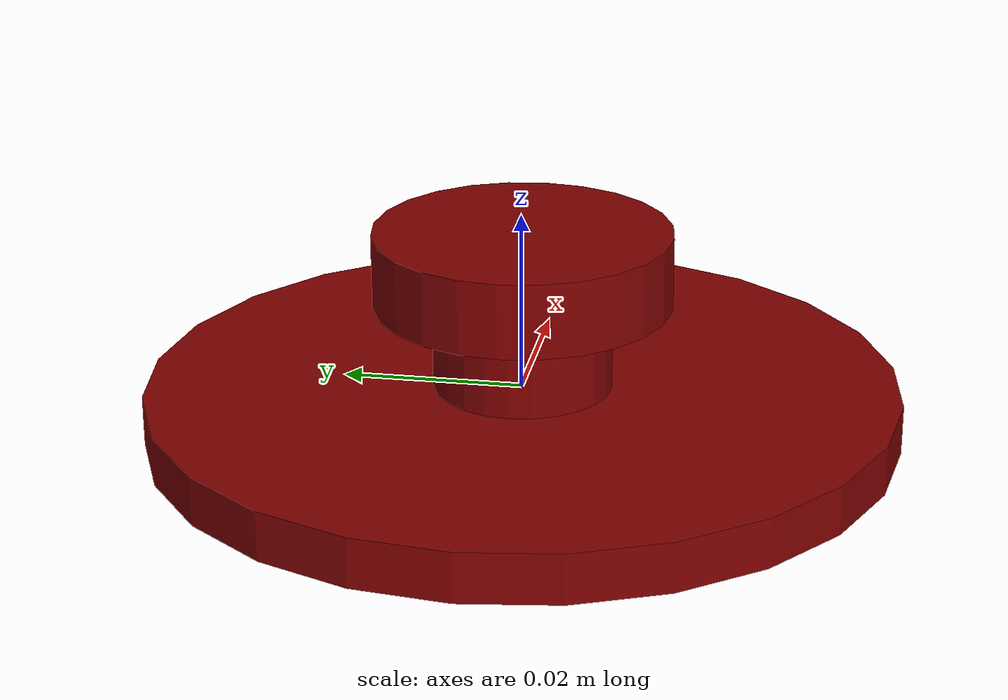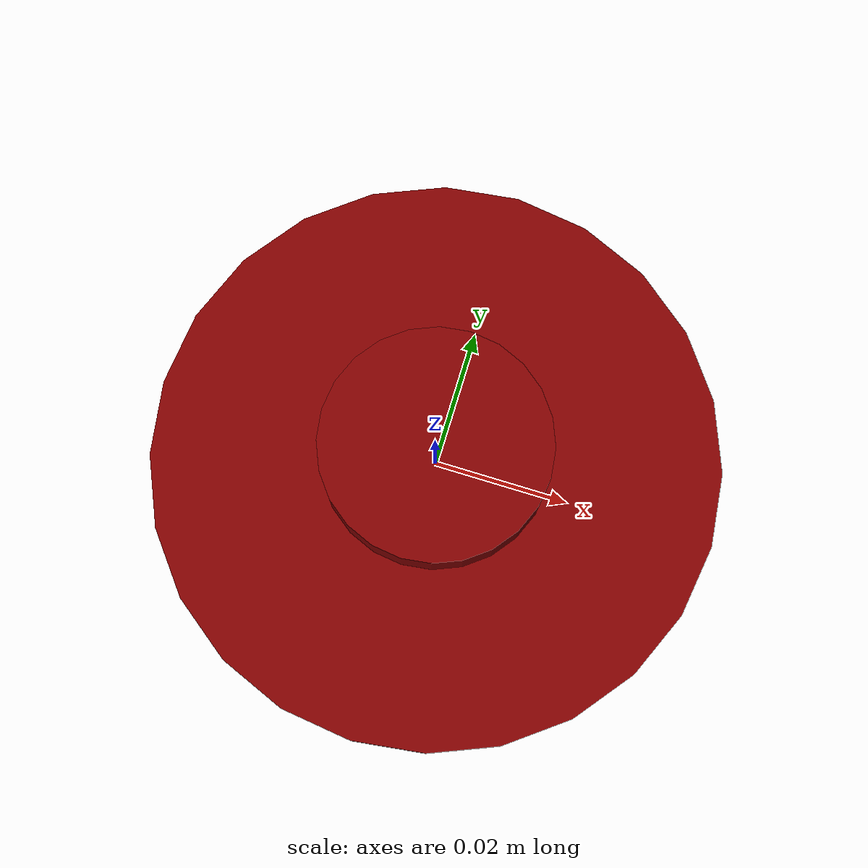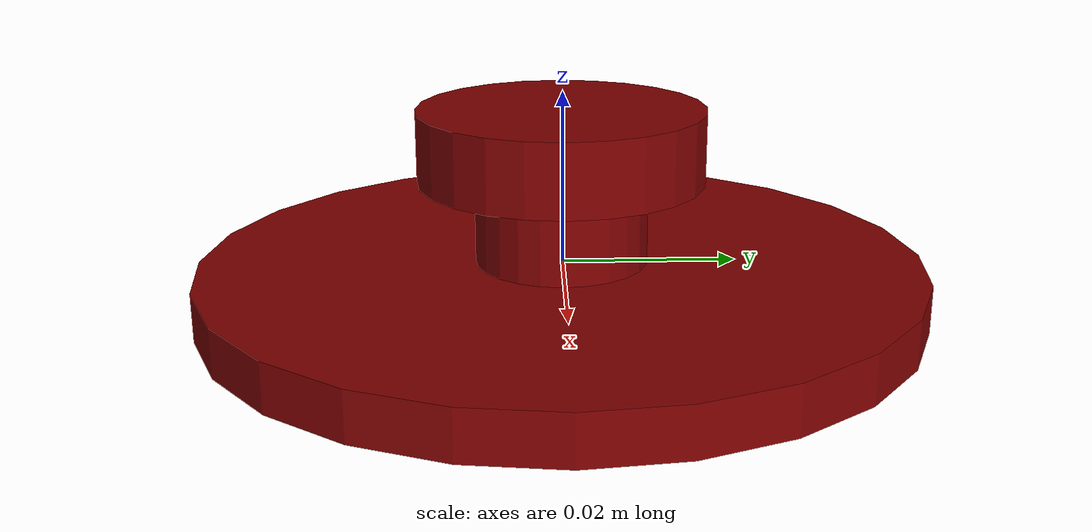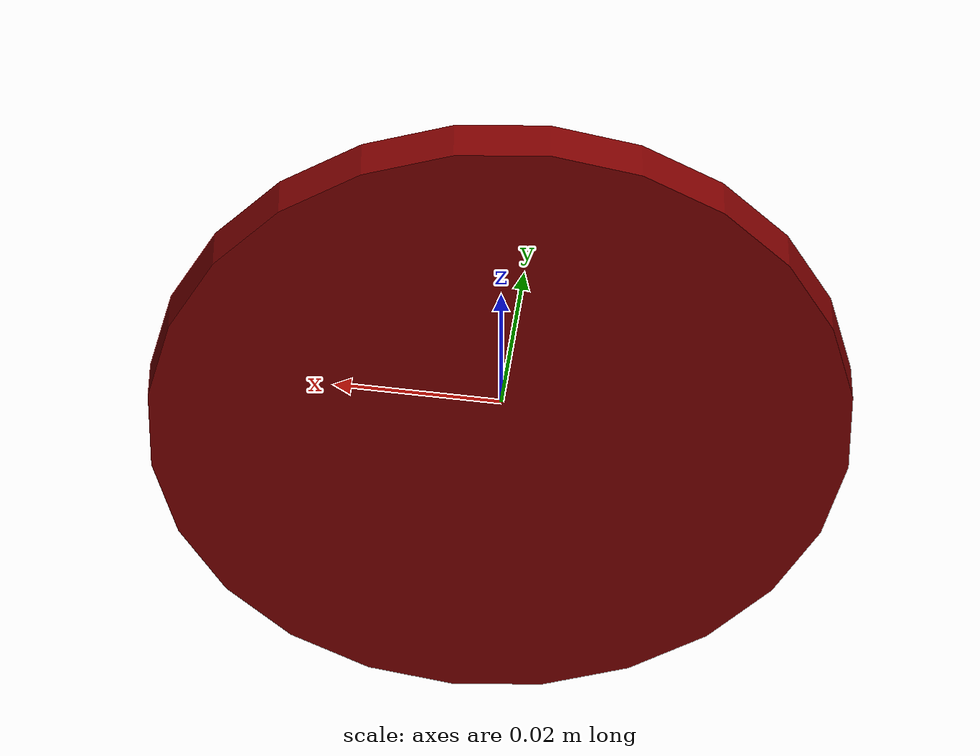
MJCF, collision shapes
<mujoco model="model">
  <option timestep="0.002" gravity="0.0 0.0 -9.81"/>
  <compiler angle="radian"/>
  <asset>
    <texture file="visuals/T_BC001.png" name="lid_material" type="2d"/>
    <material name="lid_material" rgba="1 1 1 1.0" texture="lid_material" shininess="0.4472135901451111" specular="0.3103448502657381"/>
    <mesh file="visuals/lid.obj" name="lid_vis"/>
  </asset>
  <default>
    <default class="visual">
      <geom conaffinity="0" contype="0" group="1" type="mesh"/>
    </default>
    <default class="collision">
      <geom group="0" rgba="0.5 0 0 0.5"/>
    </default>
    <default class="spawn">
      <geom group="0" rgba="1 1 1 0.5" contype="0" conaffinity="0"/>
      <site group="0" rgba="1 1 1 0.5"/>
    </default>
    <default class="region">
      <geom group="1" conaffinity="0" contype="0" rgba="0 1 0 0"/>
    </default>
  </default>
  <worldbody>
    <body>
      <body name="object">
        <geom mesh="lid_vis" type="mesh" solimp="0.998 0.998 0.001" solref="0.001 1" friction="0.95 0.3 0.1" class="visual" material="lid_material"/>
        <geom class="collision" type="cylinder" pos="0.00010599442228866784 -0.0001125867256146322 -0.0024612772264136495" size="0.04186698558926582 0.002786661498248577" quat="1.0 0.0 0.0 0.0" density="1000.0"/>
        <geom class="collision" type="cylinder" pos="0.00010599442228866784 -0.0001125867256146322 0.005774152773586366" size="0.009959487244486809 0.006921137683093548" quat="1.0 0.0 0.0 0.0" density="1000.0"/>
        <geom class="collision" name="handle_main" type="cylinder" pos="0.00010599442228866784 -0.0001125867256146322 0.01400957277358636" size="0.016482291743159294 0.00413268618285656" quat="1.0 0.0 0.0 0.0" density="1000.0"/>
        <geom class="region" name="reg_main" density="0" type="box" pos="-1.009999999999206e-06 -8.999999999773078e-08 0.00371548" size="0.042785000000000004 0.042785500000000004 0.013815000000000001"/>
      </body>
    </body>
  </worldbody>
</mujoco>
